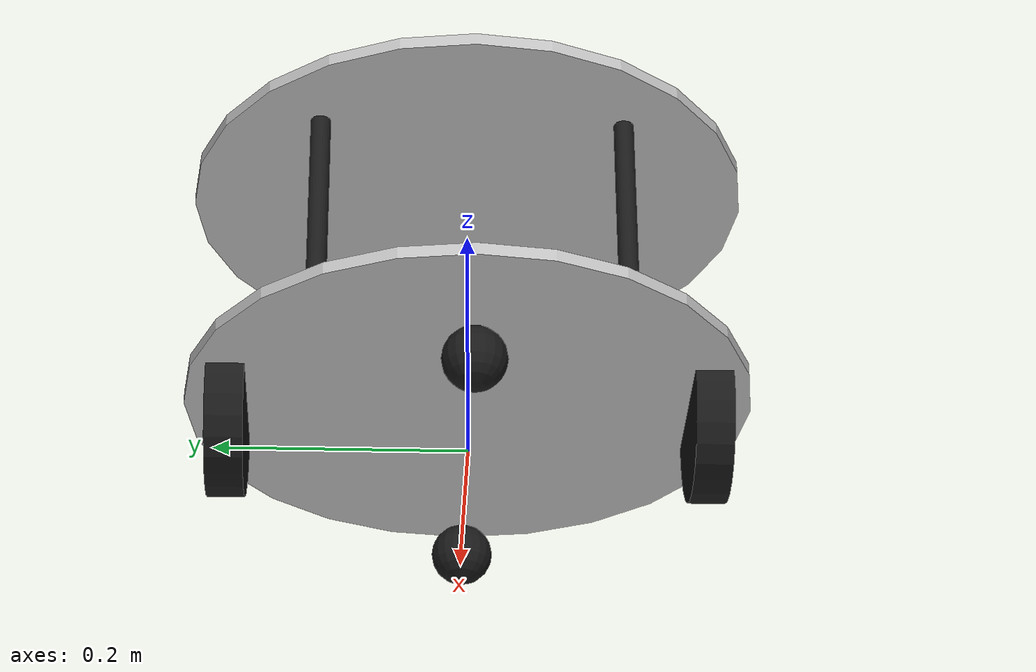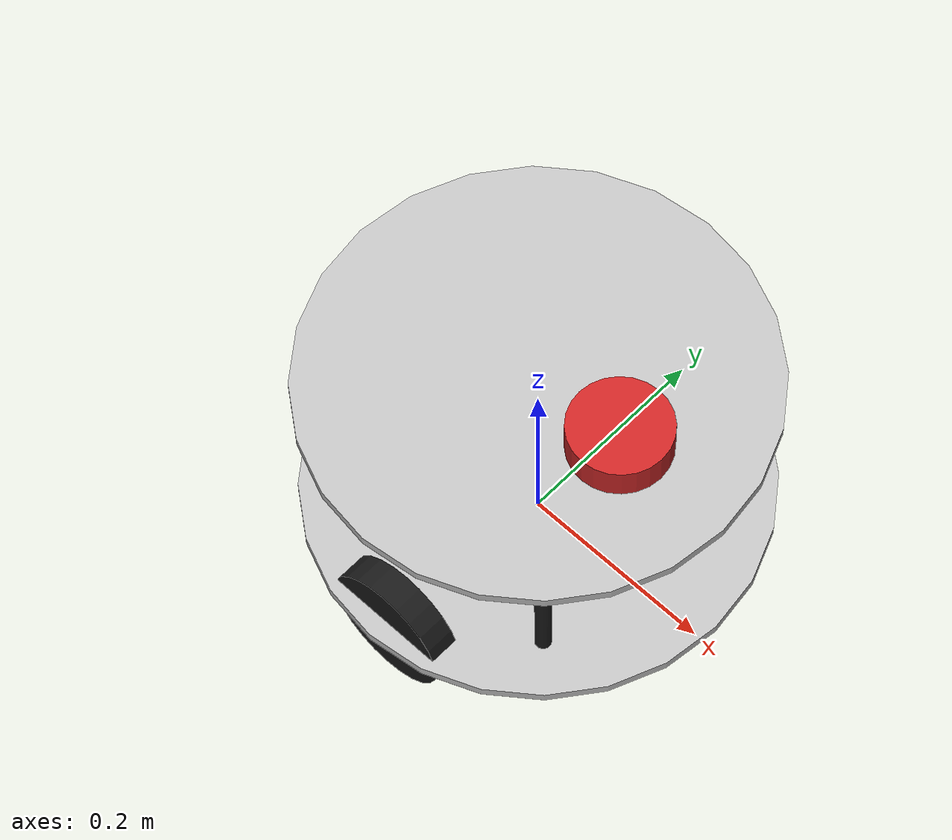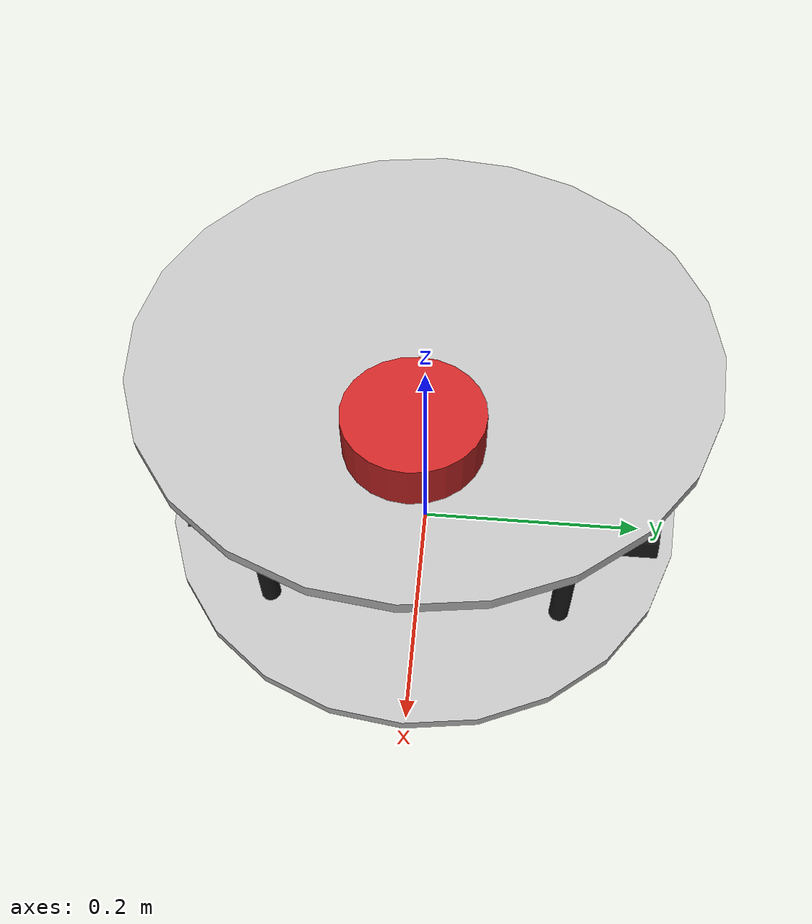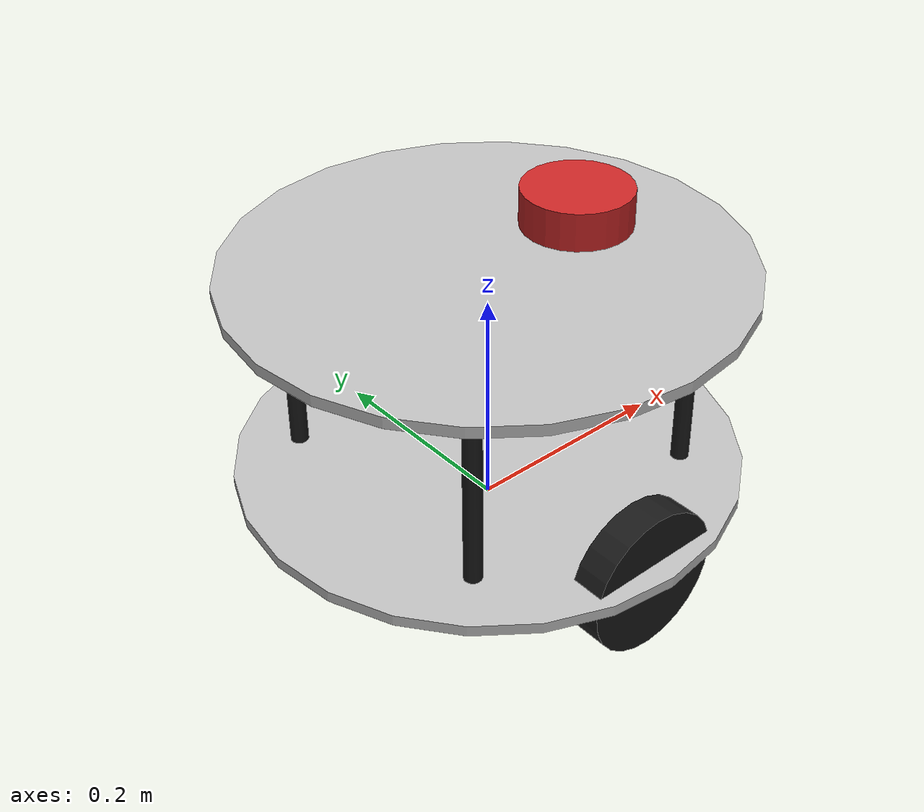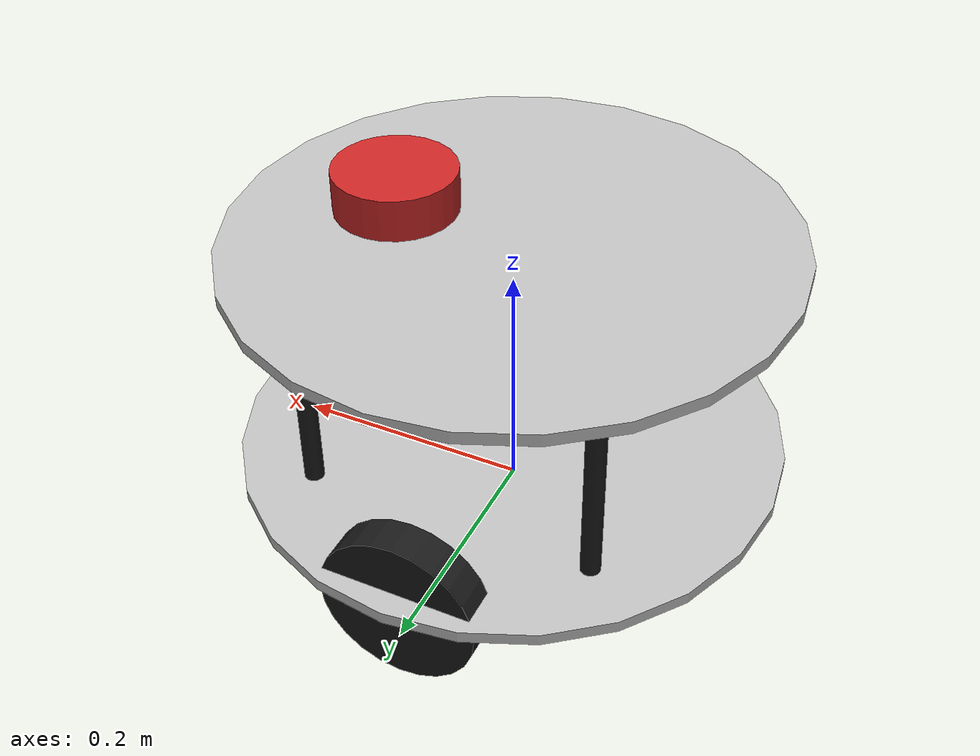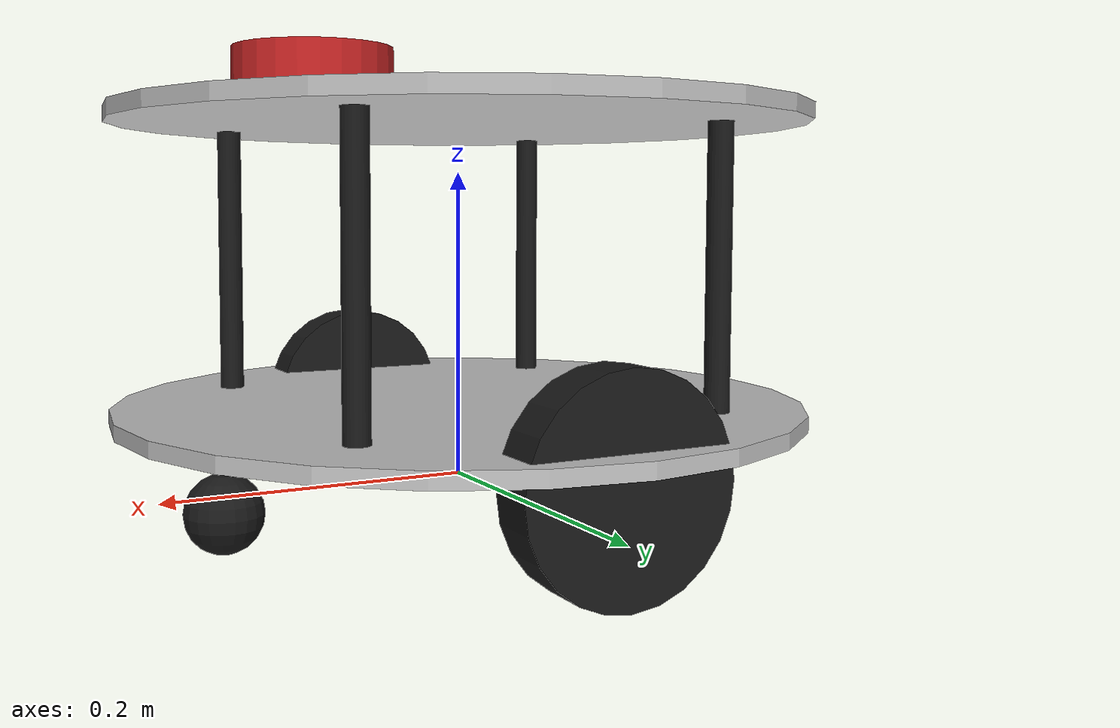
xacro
<?xml version="1.0"?>
<robot xmlns:xacro="http://www.ros.org/wiki/xacro"  name="robot">
   <xacro:arg name="use_ros2_control" default="true"/>
    <xacro:arg name="sim_mode" default="false"/>

   <xacro:include filename="common.urdf.xacro"/>
   <xacro:include filename="ros2Control.xacro" />
   <xacro:include filename="$(find eddie_bot)/description/lidar.xacro" />
</robot>

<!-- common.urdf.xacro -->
<robot xmlns:xacro="http://www.ros.org/wiki/xacro">

    <xacro:include filename="inertial_macros.xacro" />

    <!-- MATERIALS -->
    <material name="white">
        <color rgba="1 1 1 1"/>
    </material>

    <material name="black">
        <color rgba="0.1 0.1 0.1 1"/>
    </material>

    <material name="silver">
        <color rgba="0.75 0.75 0.75 1"/>
    </material>

    <material name="blue">
        <color rgba="0.2 0.2 1 1"/>
    </material>

    <!-- BASE LINK (Gốc đặt tại trung điểm 2 bánh xe trên mặt đất) -->
    <link name="base_link">
    </link>

    <!-- CHASSIS BASE (Đế đĩa tròn phía dưới) -->
    <joint name="chassis_joint" type="fixed">
        <parent link="base_link"/>
        <child link="chassis"/>
        <origin xyz="0 0 0.035"/> <!-- Đưa đế lên cách mặt đất khoảng tầm bánh xe -->
    </joint>

    <link name="chassis">
        <!-- Đĩa tròn tầng 1 (Base Plate) -->
        <visual>
            <origin xyz="0 0 0.01" rpy="0 0 0"/>
            <geometry>
                <cylinder length="0.01" radius="0.225"/> <!-- Đĩa Eddie bán kính ~22.5cm -->
            </geometry>
            <material name="silver"/>
        </visual>
        <collision>
            <origin xyz="0 0 0.01" rpy="0 0 0"/>
            <geometry>
                <cylinder length="0.01" radius="0.225"/>
            </geometry>
        </collision>

        <!-- Đĩa tròn tầng 2 (Top Plate) -->
        <visual>
            <origin xyz="0 0 0.20" rpy="0 0 0"/>
            <geometry>
                <cylinder length="0.01" radius="0.225"/>
            </geometry>
            <material name="silver"/>
        </visual>
        <collision>
            <origin xyz="0 0 0.20" rpy="0 0 0"/>
            <geometry>
                <cylinder length="0.01" radius="0.225"/>
            </geometry>
        </collision>

        <!-- Cột chống đĩa (4 Cột nhôm) -->
        <visual>
            <origin xyz="0.12 0.12 0.105" rpy="0 0 0"/>
            <geometry>
                <cylinder length="0.18" radius="0.008"/>
            </geometry>
            <material name="black"/>
        </visual>
        <visual>
            <origin xyz="-0.12 0.12 0.105" rpy="0 0 0"/>
            <geometry>
                <cylinder length="0.18" radius="0.008"/>
            </geometry>
            <material name="black"/>
        </visual>
        <visual>
            <origin xyz="0.12 -0.12 0.105" rpy="0 0 0"/>
            <geometry>
                <cylinder length="0.18" radius="0.008"/>
            </geometry>
            <material name="black"/>
        </visual>
        <visual>
            <origin xyz="-0.12 -0.12 0.105" rpy="0 0 0"/>
            <geometry>
                <cylinder length="0.18" radius="0.008"/>
            </geometry>
            <material name="black"/>
        </visual>

        <xacro:inertial_cylinder mass="3.5" length="0.20" radius="0.225">
            <origin xyz="0 0 0.10" rpy="0 0 0"/>
        </xacro:inertial_cylinder>
    </link>
    <!-- BÁNH TRÁI (LEFT WHEEL) -->
    <joint name="left_wheel_joint" type="continuous">
        <parent link="base_link"/>
        <child link="left_wheel"/>
        <origin xyz="0 0.19 0.03" rpy="-${pi/2} 0 0"/>
        <axis xyz="0 0 1"/>
    </joint>

    <link name="left_wheel">
        <visual>
            <geometry>
                <cylinder length="0.03" radius="0.065"/> <!-- Bánh Eddie bán kính ~6.5cm -->
            </geometry>
            <material name="black"/>
        </visual>
        <collision>
            <geometry>
                <cylinder length="0.03" radius="0.065"/>
            </geometry>
        </collision>
        <xacro:inertial_cylinder mass="0.3" length="0.03" radius="0.065">
            <origin xyz="0 0 0" rpy="0 0 0"/>
        </xacro:inertial_cylinder>
    </link>
    <!-- BÁNH PHẢI (RIGHT WHEEL) -->
    <joint name="right_wheel_joint" type="continuous">
        <parent link="base_link"/>
        <child link="right_wheel"/>
        <origin xyz="0 -0.19 0.03" rpy="${pi/2} 0 0"/>
        <axis xyz="0 0 -1"/>
    </joint>

    <link name="right_wheel">
        <visual>
            <geometry>
                <cylinder length="0.03" radius="0.065"/>
            </geometry>
            <material name="black"/>
        </visual>
        <collision>
            <geometry>
                <cylinder length="0.03" radius="0.065"/>
            </geometry>
        </collision>
        <xacro:inertial_cylinder mass="0.3" length="0.03" radius="0.065">
            <origin xyz="0 0 0" rpy="0 0 0"/>
        </xacro:inertial_cylinder>
    </link>
    <!-- BÁNH HƯỚNG TRƯỚC (FRONT CASTER WHEEL) -->
    <joint name="front_caster_wheel_joint" type="fixed">
        <parent link="chassis"/>
        <child link="front_caster_wheel"/>
        <origin xyz="0.16 0 -0.045" rpy="0 0 0"/>
    </joint>

    <link name="front_caster_wheel">
        <visual>
            <geometry>
                <sphere radius="0.025"/>
            </geometry>
            <material name="black"/>
        </visual>
        <collision>
            <geometry>
                <sphere radius="0.025"/>
            </geometry>
        </collision>
        <xacro:inertial_sphere mass="0.05" radius="0.025">
            <origin xyz="0 0 0" rpy="0 0 0"/>
        </xacro:inertial_sphere>
    </link>
    <!-- BÁNH HƯỚNG SAU (REAR CASTER WHEEL) -->
    <joint name="rear_caster_wheel_joint" type="fixed">
        <parent link="chassis"/>
        <child link="rear_caster_wheel"/>
        <origin xyz="-0.16 0 -0.045" rpy="0 0 0"/>
    </joint>

    <link name="rear_caster_wheel">
        <visual>
            <geometry>
                <sphere radius="0.025"/>
            </geometry>
            <material name="black"/>
        </visual>
        <collision>
            <geometry>
                <sphere radius="0.025"/>
            </geometry>
        </collision>
        <xacro:inertial_sphere mass="0.05" radius="0.025">
            <origin xyz="0 0 0" rpy="0 0 0"/>
        </xacro:inertial_sphere>
    </link>

</robot>

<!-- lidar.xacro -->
<robot xmlns:xacro="http://www.ros.org/wiki/xacro" >

    <joint name="laser_joint" type="fixed">
        <parent link="chassis"/>
        <child link="laser_frame"/>
        <origin xyz="0.1 0 0.22" rpy="0 0 0"/>
    </joint>

    <link name="laser_frame">
        <visual>
            <geometry>
                <cylinder radius="0.05" length="0.04"/>
            </geometry>
            <material name="red"/>
        </visual>
        <collision>
            <geometry>
                <cylinder radius="0.05" length="0.04"/>
            </geometry>
        </collision>
        <xacro:inertial_cylinder mass="0.1" length="0.04" radius="0.05">
            <origin xyz="0 0 0" rpy="0 0 0"/>
        </xacro:inertial_cylinder>
    </link>

</robot>
